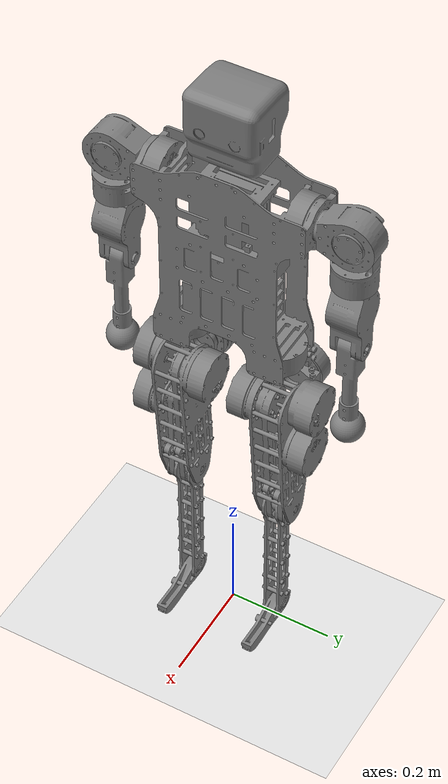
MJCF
<?xml version="1.0" encoding="utf-8"?>
<mujoco model="achilles">

  <!-- Set the angles to be in radians -->
  <compiler angle="radian" autolimits="true" eulerseq="zyx"/>

  <!-- Fix simulation options -->
  <option timestep="0.001" iterations="50" solver="Newton" gravity="0 0 -9.81"  integrator = "RK4">
  </option>

  <size nconmax="100" njmax="500"/>

  <!-- Specify the light settings -->
  <visual>
      <headlight ambient="0.5         0.5         0.5"/>
   </visual>

  <!-- List the location of all meshes -->
  <asset>
    <texture type='skybox' builtin='gradient' width='128' height='128' rgb1='0.4 0.6 0.8' rgb2='0 0 0'/>
    <mesh file="../meshes/achilles/torso.STL" name="torso"/>

    <mesh file="../meshes/achilles/left_hip_yaw.STL" name="left_hip_yaw"/>
    <mesh file="../meshes/achilles/left_hip_roll.STL" name="left_hip_roll"/>
    <mesh file="../meshes/achilles/left_hip_pitch.STL" name="left_hip_pitch"/>
    <mesh file="../meshes/achilles/left_knee_pitch.STL" name="left_knee_pitch"/>

    <mesh file="../meshes/achilles/left_shoulder_pitch.STL" name="left_shoulder_pitch"/>
    <mesh file="../meshes/achilles/left_shoulder_roll.STL" name="left_shoulder_roll"/>
    <mesh file="../meshes/achilles/left_shoulder_yaw.STL" name="left_shoulder_yaw"/>
    <mesh file="../meshes/achilles/left_elbow_pitch.STL" name="left_elbow_pitch"/>

    <mesh file="../meshes/achilles/right_hip_yaw.STL" name="right_hip_yaw"/>
    <mesh file="../meshes/achilles/right_hip_roll.STL" name="right_hip_roll"/>
    <mesh file="../meshes/achilles/right_hip_pitch.STL" name="right_hip_pitch"/>
    <mesh file="../meshes/achilles/right_knee_pitch.STL" name="right_knee_pitch"/>

    <mesh file="../meshes/achilles/right_shoulder_pitch.STL" name="right_shoulder_pitch"/>
    <mesh file="../meshes/achilles/right_shoulder_roll.STL" name="right_shoulder_roll"/>
    <mesh file="../meshes/achilles/right_shoulder_yaw.STL" name="right_shoulder_yaw"/>
    <mesh file="../meshes/achilles/right_elbow_pitch.STL" name="right_elbow_pitch"/>

    <mesh file="../meshes/achilles/ankle_pitch.STL" name="ankle_pitch"/>

    <texture builtin="checker" height="512" name="plane" rgb1="0.9 0.9 0.99"
              rgb2="0.7 0.7 0.7"
              type="2d"
              width="512"/>
    <material name="plane" reflectance="0.0" texrepeat="1 1" texture="plane"
              texuniform="true"/>
  </asset>

   <worldbody>
      <!-- Ground -->
      <geom material="plane" name="plane" rgba=".9 .9 .9 1" size="100 100 0.1" type="plane" euler="0 0 0"/>

      <!-- Achilles -->
      <body name="torso" pos="0 0 1.002">
        <!-- ixx iyy izz ixy ixz iyz-->
        <inertial mass="8.300000" fullinertia=" 0.172676 0.102985 0.087971 0.000000 0.000000 0.000000" pos="0 0 -0.107903" />
        <geom name="torso_mesh" conaffinity="0" contype="0" density="0" group="1" mesh="torso" type="mesh"/>
        <geom name="torso_collision_box" conaffinity="0" contype="0" density="0" group="1" mesh="torso" type="mesh"/>
        <site name="torso_imu_site" pos="0 0 0" euler="0 0 0" size="0.001"/>
        <site name="torso_mocap_site" pos="0 0 0" euler="0 0 0" size="0.001"/>
        <freejoint name="root"/>

        <body name="left_hip_yaw" pos="0 0.090 -0.334">
          <inertial mass="1.0" fullinertia="0.001907 0.002034 0.001175 -0.000030 0.000635 -0.000056" pos="-0.066483 -0.001451 -0.062589" />
          <joint axis="0 0 1" name="left_hip_yaw_joint" pos="0 0 0" range="-1.0 1.0" damping="0.1" frictionloss="0.3"/>
          <geom conaffinity="0" contype="0" density="0" group="1" mesh="left_hip_yaw" type="mesh"/>

            <body name="left_hip_roll" pos="-0.055 0 -0.083">
                <inertial mass="0.843444" fullinertia="0.000867 0.001086 0.001082 0 0 0" pos="0.0465 0.055 0.000784" />
                <joint axis="1 0 0" name="left_hip_roll_joint" pos="0 0 0" range="-1.0 1.0"/>
                <geom conaffinity="0" contype="0" density="0" group="1" mesh="left_hip_roll" type="mesh"/>

                <body name="left_hip_pitch" pos="0.055 0.0395 0">
                    <inertial mass="2.42" fullinertia="0.0206 0.0173 0.00594 0 0 0" pos="0.0139 -0.0336 -0.076" />
                    <joint axis="0 1 0" name="left_hip_pitch_joint" pos="0 0 0" range="-1.5 0.5" damping="0.1" frictionloss="0.3" />
                    <geom conaffinity="0" contype="0" density="0" group="1" mesh="left_hip_pitch" type="mesh"/>

                    <body name="left_knee_pitch" pos="0 -0.0395 -0.275">
                      <!--inertial mass="0.510" fullinertia="0.0666 0.006613 0.000187 0 0 0" pos="0.001 0.003 -0.131" /-->
                      <inertial mass="0.556" fullinertia="0.00666 0.006613 0.001 0 0 0" pos="0.001 0.003 -0.131" />
                      <joint axis="0 1 0" name="left_knee_pitch_joint" pos="0 0 0" range="0 2.0" damping="0.1" frictionloss="0.3" />
                      <geom conaffinity="0" contype="0" density="0" group="1" mesh="left_knee_pitch" type="mesh"/>

                      <body name="left_ankle_pitch" pos="0 0 -0.275">
                        <!--inertial mass="0.180" fullinertia="0.000031 0.000286 0.000272 0 0 0" pos="0.0272 0.0 -0.0156" /-->
                        <inertial mass="0.180" fullinertia="0.001 0.001 0.001 0 0 0" pos="0 0 0" />
                        <joint axis="0 1 0" name="left_ankle_pitch_joint" pos="0 0 0" range="-1.0 1.0" damping="0.1" frictionloss="0.3"/>
                        <geom name="left_foot" conaffinity="0" contype="0" density="0" group="1" mesh="ankle_pitch" type="mesh"/>

                        <geom name="foot_front_left" pos="0.088 0 -0.018" type="sphere" size="0.02" condim="6" friction="1" rgba="1 0 0 0"/>
                        <geom name="foot_rear_left" pos="-0.02 0 -0.018" type="sphere" size="0.02" condim="6" friction="1" rgba="1 0 0 0"/>

                        <site name="left_foot_imu_site" pos="0 0 0" euler="0 0 0" size="0.001"/>
                      </body>
                    </body>
                </body>
            </body>
        </body>

        <body name="left_shoulder_pitch" pos="0 0.159 0">
          <inertial mass="0.796" fullinertia="0.000943 0.00056 0.000675 0 0 0" pos="0 0.05 0" />
          <joint axis="0 1 0" name="left_shoulder_pitch_joint" pos="0 0 0" range="-1.58 1.58" damping="0.1" frictionloss="0.3"/>
          <geom conaffinity="0" contype="0" density="0" group="1" mesh="left_shoulder_pitch" type="mesh"/>

          <body name="left_shoulder_roll" pos="0 0.063 0">
            <inertial mass="0.484" fullinertia="0.000498 0.000458 0.000384 0 0 0" pos="0 0 -0.0708" />
            <joint axis="1 0 0" name="left_shoulder_roll_joint" pos="0 0 0" range="0 3.14" damping="0.1" frictionloss="0.3"/>
            <geom conaffinity="0" contype="0" density="0" group="1" mesh="left_shoulder_roll" type="mesh"/>

            <body name="left_shoulder_yaw" pos="0 0 -0.0986">
              <inertial mass="0.5847" fullinertia="0.0007 0.000796 0.000348 0 0 0" pos="0 0 -0.059" />
              <joint axis="0 0 1" name="left_shoulder_yaw_joint" pos="0 0 0" range="-1.58 1.58" damping="0.1" frictionloss="0.3"/>
              <geom conaffinity="0" contype="0" density="0" group="1" mesh="left_shoulder_yaw" type="mesh"/>

              <body name="left_elbow_pitch" pos="0 0 -0.133">
                <inertial mass="0.297" fullinertia="0.0018 0.0018 0.0001 0 0 0" pos="0 0 -0.1284" />
                <joint axis="0 1 0" name="left_elbow_pitch_joint" pos="0 0 0" range="-1.58 0" damping="0.1" frictionloss="0.3"/>
                <geom conaffinity="0" contype="0" density="0" group="1" mesh="left_elbow_pitch" type="mesh"/>
              </body>
            </body>
          </body>
        </body>

        <body name="right_hip_yaw" pos="0 -0.090 -0.334">
          <inertial mass="1.0" fullinertia="0.001907 0.002034 0.001175 0.000030 0.000635 0.000056" pos="-0.066483 0.001451 -0.062589" />
          <joint axis="0 0 1" name="right_hip_yaw_joint" pos="0 0 0" range="-1.0 1.0" damping="0.1" frictionloss="0.3"/>
          <geom conaffinity="0" contype="0" density="0" group="1" mesh="right_hip_yaw" type="mesh"/>

            <body name="right_hip_roll" pos="-0.055 0 -0.083">
                <inertial mass="0.843444" fullinertia="0.000867 0.001086 0.001082 0 0 0" pos="0.0465 -0.055 0.000784" />
                <joint axis="1 0 0" name="right_hip_roll_joint" pos="0 0 0" range="-1.0 1.0" damping="0.1" frictionloss="0.3"/>
                <geom conaffinity="0" contype="0" density="0" group="1" mesh="right_hip_roll" type="mesh"/>

                <body name="right_hip_pitch" pos="0.055 -0.0395 0">
                    <inertial mass="2.42" fullinertia="0.0206 0.0173 0.00594 0 0 0" pos="0.0139 0.0336 -0.076" />
                    <joint axis="0 1 0" name="right_hip_pitch_joint" pos="0 0 0" range="-1.5 0.5" damping="0.1" frictionloss="0.3"/>
                    <geom conaffinity="0" contype="0" density="0" group="1" mesh="right_hip_pitch" type="mesh"/>

                    <body name="right_knee_pitch" pos="0 0.0395 -0.275">
                      <!--inertial mass="0.510" fullinertia="0.0666 0.006613 0.000187 0 0 0" pos="0.001 -0.003 -0.131" /-->
                      <inertial mass="0.556" fullinertia="0.00666 0.006613 0.001 0 0 0" pos="0.001 -0.003 -0.131" />
                      <joint axis="0 1 0" name="right_knee_pitch_joint" pos="0 0 0" range="0 2.0" damping="0.1" frictionloss="0.3" />
                      <geom conaffinity="0" contype="0" density="0" group="1" mesh="right_knee_pitch" type="mesh"/>

                      <body name="right_ankle_pitch" pos="0 0 -0.275">
                        <!--inertial mass="0.180" fullinertia="0.000031 0.000286 0.000272 0 0 0" pos="0.0272 0.0 -0.0156" /-->
                        <inertial mass="0.180" fullinertia="0.001 0.001 0.001 0 0 0" pos="0 0 0" />
                        <joint axis="0 1 0" name="right_ankle_pitch_joint" pos="0 0 0" range="-1.0 1.0" damping="0.1" frictionloss="0.3" />
                        <geom name="right_foot" conaffinity="0" contype="0" density="0" group="1" mesh="ankle_pitch" type="mesh"/>

                        <geom name="foot_front_right" pos="0.088 0 -0.018" type="sphere" size="0.02" condim="6" friction="1" rgba="1 0 0 0"/>
                        <geom name="foot_rear_right" pos="-0.02 0 -0.018" type="sphere" size="0.02" condim="6" friction="1" rgba="1 0 0 0"/>

                        <site name="right_foot_imu_site" pos="0 0 0" euler="0 0 0" size="0.001"/>
                      </body>
                    </body>
                </body>
            </body>
        </body>

        <body name="right_shoulder_pitch" pos="0 -0.159 0">
          <inertial mass="0.796" fullinertia="0.000943 0.00056 0.000675 0 0 0" pos="0 -0.05 0" />
          <joint axis="0 1 0" name="right_shoulder_pitch_joint" pos="0 0 0" range="-1.58 1.58" damping="0.1" frictionloss="0.3" />
          <geom conaffinity="0" contype="0" density="0" group="1" mesh="right_shoulder_pitch" type="mesh"/>

          <body name="right_shoulder_roll" pos="0 -0.063 0">
            <inertial mass="0.484" fullinertia="0.000498 0.000458 0.000384 0 0 0" pos="0 0 -0.0708" />
            <joint axis="1 0 0" name="right_shoulder_roll_joint" pos="0 0 0" range="-3.14 0" damping="0.1" frictionloss="0.3"/>
            <geom conaffinity="0" contype="0" density="0" group="1" mesh="right_shoulder_roll" type="mesh"/>

            <body name="right_shoulder_yaw" pos="0 0 -0.0986">
              <inertial mass="0.5847" fullinertia="0.0007 0.000796 0.000348 0 0 0" pos="0 0 -0.059" />
              <joint axis="0 0 1" name="right_shoulder_yaw_joint" pos="0 0 0" range="-1.58 1.58" damping="0.1" frictionloss="0.3"/>
              <geom conaffinity="0" contype="0" density="0" group="1" mesh="right_shoulder_yaw" type="mesh"/>

              <body name="right_elbow_pitch" pos="0 0 -0.133">
                <inertial mass="0.297" fullinertia="0.0018 0.0018 0.0001 0 0 0" pos="0 0 -0.1284" />
                <joint axis="0 1 0" name="right_elbow_pitch_joint" pos="0 0 0" range="-1.58 0" damping="0.1" frictionloss="0.3"/>
                <geom conaffinity="0" contype="0" density="0" group="1" mesh="right_elbow_pitch" type="mesh"/>
              </body>
            </body>
          </body>
        </body>

      </body>

   </worldbody>

  <actuator>

    <motor name="left_hip_yaw_tor"  joint="left_hip_yaw_joint" ctrllimited="true" ctrlrange="-35 35" />
    <motor name="left_hip_roll_tor"  joint="left_hip_roll_joint" ctrllimited="true" ctrlrange="-70  70" />
    <motor name="left_hip_pitch_tor"  joint="left_hip_pitch_joint" ctrllimited="true" ctrlrange="-35 35" />
    <motor name="left_knee_pitch_tor"  joint="left_knee_pitch_joint" ctrllimited="true" ctrlrange="-70  70" />
    <motor name="left_ankle_pitch_tor"  joint="left_ankle_pitch_joint" ctrllimited="true" ctrlrange="-35 35" />
    <motor name="left_shoulder_pitch_tor"  joint="left_shoulder_pitch_joint" ctrllimited="true" ctrlrange="-35 35" />
    <motor name="left_shoulder_roll_tor"  joint="left_shoulder_roll_joint" ctrllimited="true" ctrlrange="-12  12" />
    <motor name="left_shoulder_yaw_tor"  joint="left_shoulder_yaw_joint" ctrllimited="true" ctrlrange="-12  12" />
    <motor name="left_elbow_pitch_tor"  joint="left_elbow_pitch_joint" ctrllimited="true" ctrlrange="-24  24" />

    <motor name="right_hip_yaw_tor"  joint="right_hip_yaw_joint" ctrllimited="true" ctrlrange="-35 35" />
    <motor name="right_hip_roll_tor"  joint="right_hip_roll_joint" ctrllimited="true" ctrlrange="-70  70" />
    <motor name="right_hip_pitch_tor"  joint="right_hip_pitch_joint" ctrllimited="true" ctrlrange="-35 35" />
    <motor name="right_knee_pitch_tor"  joint="right_knee_pitch_joint" ctrllimited="true" ctrlrange="-70  70" />
    <motor name="right_ankle_pitch_tor"  joint="right_ankle_pitch_joint" ctrllimited="true" ctrlrange="-35 35" />
    <motor name="right_shoulder_pitch_tor"  joint="right_shoulder_pitch_joint" ctrllimited="true" ctrlrange="-35 35" />
    <motor name="right_shoulder_roll_tor"  joint="right_shoulder_roll_joint" ctrllimited="true" ctrlrange="-12 12" />
    <motor name="right_shoulder_yaw_tor"  joint="right_shoulder_yaw_joint" ctrllimited="true" ctrlrange="-12 12" />
    <motor name="right_elbow_pitch_tor"  joint="right_elbow_pitch_joint" ctrllimited="true" ctrlrange="-24  24" />

  </actuator>

  <contact>

    <pair name="torso_to_plane" geom1="torso_collision_box" geom2="plane" friction="1 1 0.001 0.001 0.001"/>

    <pair name="foot_front_left_to_plane" geom1="foot_front_left" geom2="plane" friction="1 1 0.001 0.001 0.001"/>
    <pair name="foot_rear_left_to_plane" geom1="foot_rear_left" geom2="plane" friction="1 1 0.001 0.001 0.001"/>
    <pair name="foot_front_right_to_plane" geom1="foot_front_right" geom2="plane" friction="1 1 0.001 0.001 0.001"/>
    <pair name="foot_rear_right_to_plane" geom1="foot_rear_right" geom2="plane" friction="1 1 0.001 0.001 0.001"/>
  </contact>

  <sensor>
    <!-- Joint position sensors -->
    <jointpos name="left_hip_yaw_joint_pos_sensor" joint="left_hip_yaw_joint" noise="0.001"/>
    <jointpos name="left_hip_roll_joint_pos_sensor" joint="left_hip_roll_joint" noise="0.001"/>
    <jointpos name="left_hip_pitch_joint_pos_sensor" joint="left_hip_pitch_joint" noise="0.001"/>
    <jointpos name="left_knee_pitch_joint_pos_sensor" joint="left_knee_pitch_joint" noise="0.001"/>
    <jointpos name="left_ankle_pitch_joint_pos_sensor" joint="left_ankle_pitch_joint" noise="0.001"/>

    <jointpos name="left_shoulder_pitch_joint_pos_sensor" joint="left_shoulder_pitch_joint" noise="0.001"/>
    <jointpos name="left_shoulder_roll_joint_pos_sensor" joint="left_shoulder_roll_joint" noise="0.001"/>
    <jointpos name="left_shoulder_yaw_joint_pos_sensor" joint="left_shoulder_yaw_joint" noise="0.001"/>
    <jointpos name="left_elbow_pitch_joint_pos_sensor" joint="left_elbow_pitch_joint" noise="0.001"/>

    <jointpos name="right_hip_yaw_joint_pos_sensor" joint="right_hip_yaw_joint" noise="0.001"/>
    <jointpos name="right_hip_roll_joint_pos_sensor" joint="right_hip_roll_joint" noise="0.001"/>
    <jointpos name="right_hip_pitch_joint_pos_sensor" joint="right_hip_pitch_joint" noise="0.001"/>
    <jointpos name="right_knee_pitch_joint_pos_sensor" joint="right_knee_pitch_joint" noise="0.001"/>
    <jointpos name="right_ankle_pitch_joint_pos_sensor" joint="right_ankle_pitch_joint" noise="0.001"/>

    <jointpos name="right_shoulder_pitch_joint_pos_sensor" joint="right_shoulder_pitch_joint" noise="0.001"/>
    <jointpos name="right_shoulder_roll_joint_pos_sensor" joint="right_shoulder_roll_joint" noise="0.001"/>
    <jointpos name="right_shoulder_yaw_joint_pos_sensor" joint="right_shoulder_yaw_joint" noise="0.001"/>
    <jointpos name="right_elbow_pitch_joint_pos_sensor" joint="right_elbow_pitch_joint" noise="0.001"/>

    <!-- Joint velocity sensors -->
    <jointvel name="left_hip_yaw_joint_vel_sensor" joint="left_hip_yaw_joint" noise="0.01"/>
    <jointvel name="left_hip_roll_joint_vel_sensor" joint="left_hip_roll_joint" noise="0.01"/>
    <jointvel name="left_hip_pitch_joint_vel_sensor" joint="left_hip_pitch_joint" noise="0.01"/>
    <jointvel name="left_knee_pitch_joint_vel_sensor" joint="left_knee_pitch_joint" noise="0.01"/>
    <jointvel name="left_ankle_pitch_joint_vel_sensor" joint="left_ankle_pitch_joint" noise="0.01"/>

    <jointvel name="left_shoulder_pitch_joint_vel_sensor" joint="left_shoulder_pitch_joint" noise="0.01"/>
    <jointvel name="left_shoulder_roll_joint_vel_sensor" joint="left_shoulder_roll_joint" noise="0.01"/>
    <jointvel name="left_shoulder_yaw_joint_vel_sensor" joint="left_shoulder_yaw_joint" noise="0.01"/>
    <jointvel name="left_elbow_pitch_joint_vel_sensor" joint="left_elbow_pitch_joint" noise="0.01"/>

    <jointvel name="right_hip_yaw_joint_vel_sensor" joint="right_hip_yaw_joint" noise="0.01"/>
    <jointvel name="right_hip_roll_joint_vel_sensor" joint="right_hip_roll_joint" noise="0.01"/>
    <jointvel name="right_hip_pitch_joint_vel_sensor" joint="right_hip_pitch_joint" noise="0.01"/>
    <jointvel name="right_knee_pitch_joint_vel_sensor" joint="right_knee_pitch_joint" noise="0.01"/>
    <jointvel name="right_ankle_pitch_joint_vel_sensor" joint="right_ankle_pitch_joint" noise="0.01"/>

    <jointvel name="right_shoulder_pitch_joint_vel_sensor" joint="right_shoulder_pitch_joint" noise="0.01"/>
    <jointvel name="right_shoulder_roll_joint_vel_sensor" joint="right_shoulder_roll_joint" noise="0.01"/>
    <jointvel name="right_shoulder_yaw_joint_vel_sensor" joint="right_shoulder_yaw_joint" noise="0.01"/>
    <jointvel name="right_elbow_pitch_joint_vel_sensor" joint="right_elbow_pitch_joint" noise="0.01"/>

    <!-- IMU sensors -->
    <accelerometer name="torso_imu_acc_sensor" site="torso_imu_site" noise="0.1"/>
    <gyro name="torso_imu_gyro_sensor" site="torso_imu_site" noise="0.01"/>
    <framequat name="torso_imu_quat_sensor" objtype="site" objname="torso_imu_site" noise="0.01"/>

    <accelerometer name="left_foot_imu_acc_sensor" site="left_foot_imu_site" noise="0.1"/>
    <gyro name="left_foot_imu_gyro_sensor" site="left_foot_imu_site" noise="0.01"/>
    <framequat name="left_foot_imu_quat_sensor" objtype="site" objname="left_foot_imu_site" noise="0.01"/>

    <accelerometer name="right_foot_imu_acc_sensor" site="right_foot_imu_site" noise="0.1"/>
    <gyro name="right_foot_imu_gyro_sensor" site="right_foot_imu_site" noise="0.01"/>
    <framequat name="right_foot_imu_quat_sensor" objtype="site" objname="right_foot_imu_site" noise="0.01"/>

    <!-- Mocap sensors -->
    <framepos name="torso_mocap_pos_sensor" objtype="site" objname="torso_mocap_site" noise="0.01"/>
    <framequat name="torso_mocap_quat_sensor" objtype="site" objname="torso_mocap_site" noise="0.01"/>

  </sensor>
</mujoco>
